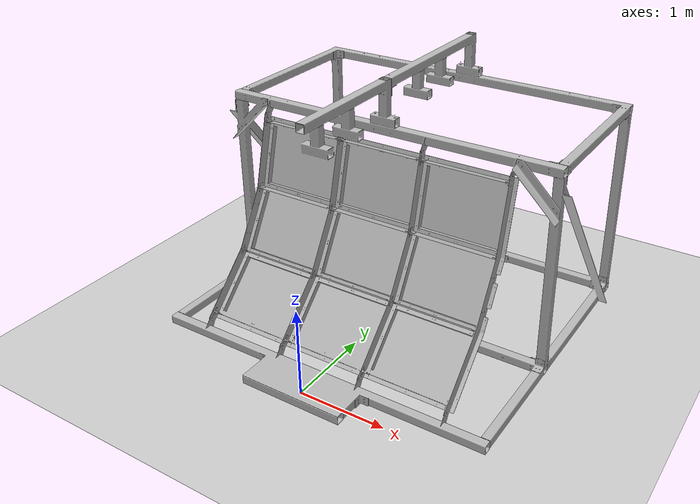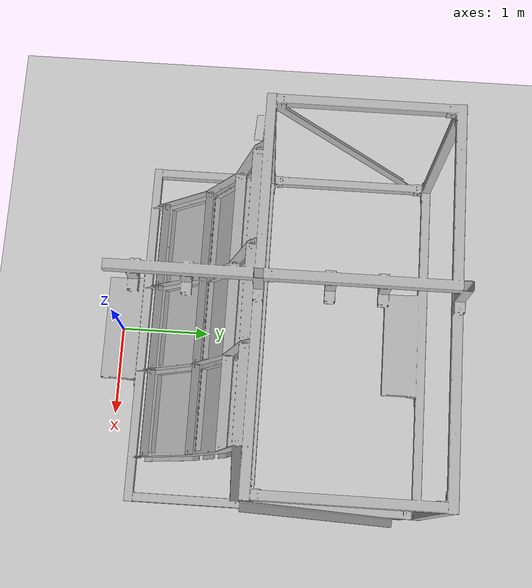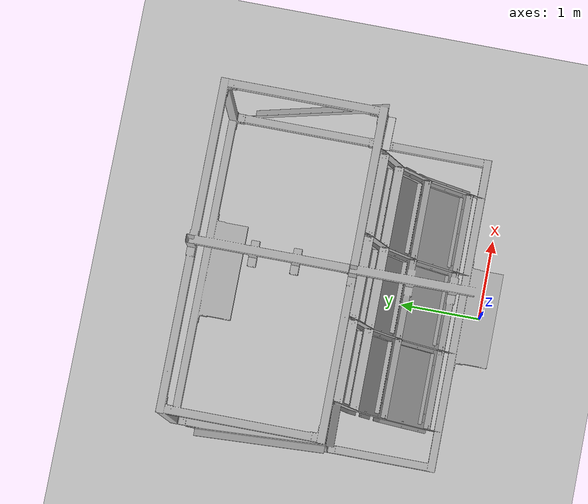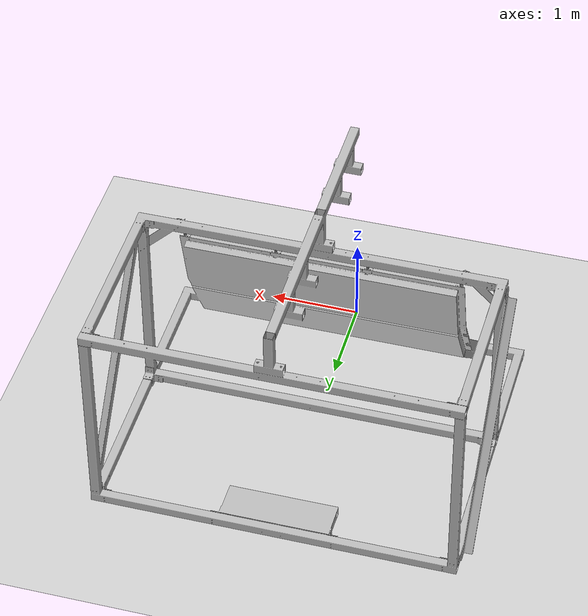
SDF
<sdf version="1.6">
 <world name="default">
  <light name="sun" type="directional">
   <pose>0 0 10 0 -0 0</pose>
   <diffuse>0.8 0.8 0.8 1</diffuse>
   <specular>0.2 0.2 0.2 1</specular>
   <attenuation>
    <range>1000</range>
    <constant>0.9</constant>
    <linear>0.01</linear>
    <quadratic>0.001</quadratic>
   </attenuation>
   <direction>-0.5 0.1 -0.9</direction>
  </light>
  <model name="ground_plane">
   <static>1</static>
   <link name="link">
    <collision name="collision">
     <geometry><plane><normal>0 0 1</normal><size>100 100</size></plane></geometry>
     <surface>
      <contact><collide_bitmask>65535</collide_bitmask></contact>
      <friction><ode><mu>100</mu><mu2>50</mu2></ode></friction>
     </surface>
    </collision>
    <visual name="visual">
     <cast_shadows>0</cast_shadows>
     <geometry><plane><normal>0 0 1</normal><size>100 100</size></plane></geometry>
     <material>
      <script><uri>file://media/materials/scripts/gazebo.material</uri><name>Gazebo/Grey</name></script>
     </material>
    </visual>
   </link>
  </model>
  <gravity>0 0 -9.8</gravity>
  <magnetic_field>6e-06 2.3e-05 -4.2e-05</magnetic_field>
  <atmosphere type="adiabatic"/>
  <physics name="default_physics" default="0" type="ode">
   <max_step_size>0.001</max_step_size>
   <real_time_factor>1</real_time_factor>
   <real_time_update_rate>1000</real_time_update_rate>
  </physics>
  <scene><ambient>0.4 0.4 0.4 1</ambient><background>0.7 0.7 0.7 1</background><shadows>1</shadows></scene>
  <spherical_coordinates>
   <surface_model>EARTH_WGS84</surface_model>
   <latitude_deg>0</latitude_deg>
   <longitude_deg>0</longitude_deg>
   <elevation>0</elevation>
   <heading_deg>0</heading_deg>
  </spherical_coordinates>
  <model name="frame_urdf">
   <link name="base_link">
    <inertial>
     <pose>0 0 0.106 0 0 0</pose>
     <mass>10000</mass>
     <inertia>
      <ixx>153.312</ixx>
      <ixy>0.0308994</ixy>
      <ixz>-0.0261813</ixz>
      <iyy>264.764</iyy>
      <iyz>51.9976</iyz>
      <izz>331.204</izz>
     </inertia>
    </inertial>
    <collision name="base_link_collision">
     <geometry>
      <mesh><scale>1 1 1</scale><uri>/home/hyh/catkin_ws/src/frame_urdf/meshes/base_link.STL</uri></mesh>
     </geometry>
     <surface><friction><ode><mu>100</mu><mu2>100</mu2></ode></friction></surface>
    </collision>
    <visual name="base_link_visual">
     <geometry>
      <mesh><scale>1 1 1</scale><uri>/home/hyh/catkin_ws/src/frame_urdf/meshes/base_link.STL</uri></mesh>
     </geometry>
    </visual>
   </link>
   <pose>0.000 -0.000 0.106 0 0 0</pose>
  </model>
 </world>
</sdf>
